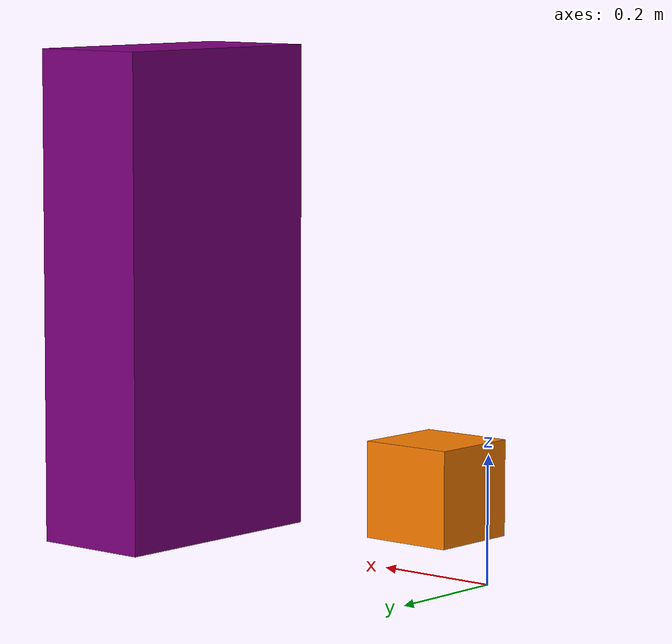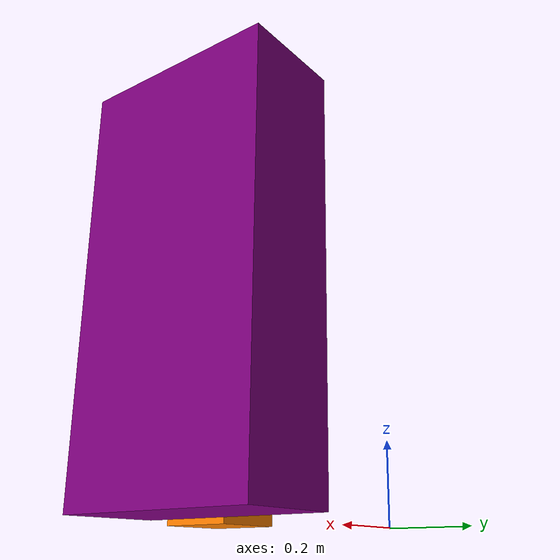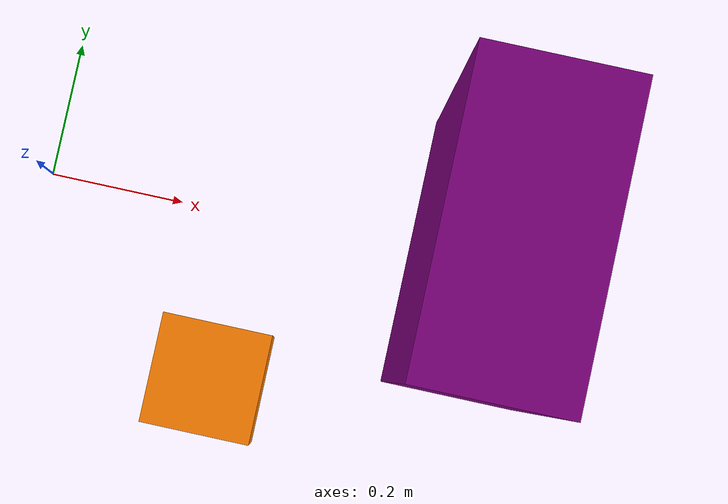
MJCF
<mujoco model="boxes">
  <worldbody>

    <body name="purple_box" pos="0.65 0.0 0.4">
      <freejoint/>
      <geom type="box" size="0.1 0.2 0.4" rgba="0.5 0.0 0.5 1.0"/>
      <inertial pos="0 0 0" mass="5.0" diaginertia="1.0 1.0 1.0"/>
    </body>

    <body name="orange_box" pos="0.3 -0.25 0.08">
      <freejoint/>
      <geom type="box" size="0.08 0.08 0.08" rgba="1.0 0.5 0.0 1.0"/>
      <inertial pos="0 0 0" mass="3.0" diaginertia="0.5 0.5 0.5"/>
    </body>

  </worldbody>
</mujoco>
